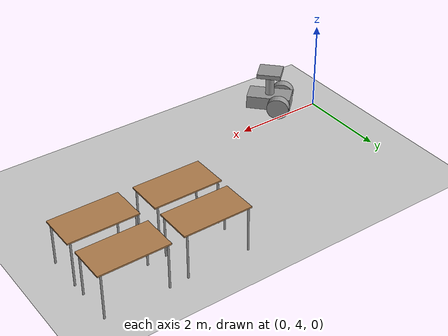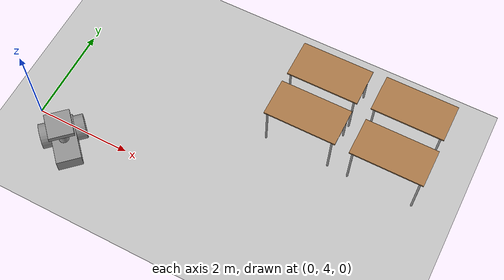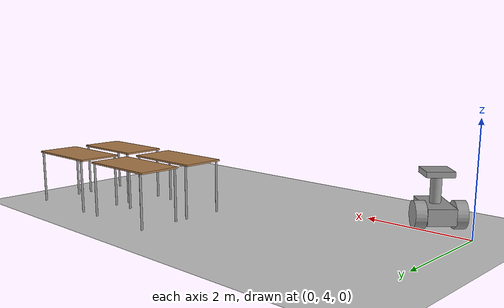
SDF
<sdf version="1.6">
 <world name="default">
  <model name="ground_plane">
   <static>1</static>
   <link name="link">
    <collision name="collision">
     <geometry><plane><normal>0 0 1</normal><size>100 100</size></plane></geometry>
     <surface><friction><ode><mu>100</mu><mu2>50</mu2></ode></friction></surface>
    </collision>
    <visual name="visual">
     <cast_shadows>0</cast_shadows>
     <geometry><plane><normal>0 0 1</normal><size>100 100</size></plane></geometry>
     <material>
      <script><uri>file://media/materials/scripts/gazebo.material</uri><name>Gazebo/Grey</name></script>
     </material>
    </visual>
   </link>
  </model>
  <model name="cody_1">
   <link name="link_0">
    <pose>2.26803 -0.161715 0.25 0 -0 0</pose>
    <inertial>
     <mass>0.139888</mass>
     <inertia>
      <ixx>0.00424815</ixx>
      <ixy>0</ixy>
      <ixz>0</ixz>
      <iyy>0.01242</iyy>
      <iyz>0</iyz>
      <izz>0.0151428</izz>
     </inertia>
    </inertial>
    <visual name="visual">
     <geometry><box><size>1 0.5 0.3</size></box></geometry>
     <material>
      <lighting>1</lighting>
      <script><uri>file://media/materials/scripts/gazebo.material</uri><name>Gazebo/Grey</name></script>
      <shader type="pixel"><normal_map>__default__</normal_map></shader>
      <ambient>0.3 0.3 0.3 1</ambient>
      <diffuse>0.7 0.7 0.7 1</diffuse>
      <specular>0.01 0.01 0.01 1</specular>
      <emissive>0 0 0 1</emissive>
     </material>
    </visual>
    <collision name="collision">
     <geometry><box><size>1 0.5 0.3</size></box></geometry>
     <surface>
      <friction>
       <ode><mu>1</mu><mu2>1</mu2><fdir1>0 0 0</fdir1><slip1>0</slip1><slip2>0</slip2></ode>
       <torsional>
        <coefficient>1</coefficient>
        <patch_radius>0</patch_radius>
        <surface_radius>0</surface_radius>
        <use_patch_radius>1</use_patch_radius>
        <ode><slip>0</slip></ode>
       </torsional>
      </friction>
      <bounce><restitution_coefficient>0</restitution_coefficient><threshold>1e+06</threshold></bounce>
      <contact>
       <collide_without_contact>0</collide_without_contact>
       <collide_without_contact_bitmask>1</collide_without_contact_bitmask>
       <collide_bitmask>1</collide_bitmask>
       <ode>
        <soft_cfm>0</soft_cfm>
        <soft_erp>0.2</soft_erp>
        <kp>1e+13</kp>
        <kd>1</kd>
        <max_vel>0.01</max_vel>
        <min_depth>0</min_depth>
       </ode>
       <bullet>
        <split_impulse>1</split_impulse>
        <split_impulse_penetration_threshold>-0.01</split_impulse_penetration_threshold>
        <soft_cfm>0</soft_cfm>
        <soft_erp>0.2</soft_erp>
        <kp>1e+13</kp>
        <kd>1</kd>
       </bullet>
      </contact>
     </surface>
    </collision>
   </link>
   <link name="link_1">
    <pose>1.96803 -0.161715 0.2 0 -0 0</pose>
    <inertial>
     <mass>1</mass>
     <inertia><ixx>0.1</ixx><ixy>0</ixy><ixz>0</ixz><iyy>0.1</iyy><iyz>0</iyz><izz>0.1</izz></inertia>
    </inertial>
    <visual name="visual">
     <geometry><sphere><radius>0.2</radius></sphere></geometry>
     <material>
      <lighting>1</lighting>
      <script><uri>file://media/materials/scripts/gazebo.material</uri><name>Gazebo/Grey</name></script>
      <shader type="pixel"><normal_map>__default__</normal_map></shader>
      <ambient>0.3 0.3 0.3 1</ambient>
      <diffuse>0.7 0.7 0.7 1</diffuse>
      <specular>0.01 0.01 0.01 1</specular>
      <emissive>0 0 0 1</emissive>
     </material>
    </visual>
    <collision name="collision">
     <geometry><sphere><radius>0.2</radius></sphere></geometry>
     <surface>
      <friction>
       <ode><mu>1</mu><mu2>1</mu2><fdir1>0 0 0</fdir1><slip1>0</slip1><slip2>0</slip2></ode>
       <torsional>
        <coefficient>1</coefficient>
        <patch_radius>0</patch_radius>
        <surface_radius>0</surface_radius>
        <use_patch_radius>1</use_patch_radius>
        <ode><slip>0</slip></ode>
       </torsional>
      </friction>
      <bounce><restitution_coefficient>0</restitution_coefficient><threshold>1e+06</threshold></bounce>
      <contact>
       <collide_without_contact>0</collide_without_contact>
       <collide_without_contact_bitmask>1</collide_without_contact_bitmask>
       <collide_bitmask>1</collide_bitmask>
       <ode>
        <soft_cfm>0</soft_cfm>
        <soft_erp>0.2</soft_erp>
        <kp>1e+13</kp>
        <kd>1</kd>
        <max_vel>0.01</max_vel>
        <min_depth>0</min_depth>
       </ode>
       <bullet>
        <split_impulse>1</split_impulse>
        <split_impulse_penetration_threshold>-0.01</split_impulse_penetration_threshold>
        <soft_cfm>0</soft_cfm>
        <soft_erp>0.2</soft_erp>
        <kp>1e+13</kp>
        <kd>1</kd>
       </bullet>
      </contact>
     </surface>
    </collision>
   </link>
   <link name="link_2_clone">
    <pose>2.51803 -0.511739 0.25 1.5707 -0 0</pose>
    <inertial>
     <mass>1</mass>
     <inertia><ixx>0.145833</ixx><ixy>0</ixy><ixz>0</ixz><iyy>0.145833</iyy><iyz>0</iyz><izz>0.125</izz></inertia>
    </inertial>
    <visual name="visual">
     <geometry><cylinder><radius>0.25</radius><length>0.2</length></cylinder></geometry>
     <material>
      <lighting>1</lighting>
      <script><uri>file://media/materials/scripts/gazebo.material</uri><name>Gazebo/Grey</name></script>
      <shader type="pixel"><normal_map>__default__</normal_map></shader>
      <ambient>0.3 0.3 0.3 1</ambient>
      <diffuse>0.7 0.7 0.7 1</diffuse>
      <specular>0.01 0.01 0.01 1</specular>
      <emissive>0 0 0 1</emissive>
     </material>
    </visual>
    <collision name="collision">
     <geometry><cylinder><radius>0.25</radius><length>0.2</length></cylinder></geometry>
     <surface>
      <friction>
       <ode><mu>1</mu><mu2>1</mu2><fdir1>0 0 0</fdir1><slip1>0</slip1><slip2>0</slip2></ode>
       <torsional>
        <coefficient>1</coefficient>
        <patch_radius>0</patch_radius>
        <surface_radius>0</surface_radius>
        <use_patch_radius>1</use_patch_radius>
        <ode><slip>0</slip></ode>
       </torsional>
      </friction>
      <bounce><restitution_coefficient>0</restitution_coefficient><threshold>1e+06</threshold></bounce>
      <contact>
       <collide_without_contact>0</collide_without_contact>
       <collide_without_contact_bitmask>1</collide_without_contact_bitmask>
       <collide_bitmask>1</collide_bitmask>
       <ode>
        <soft_cfm>0</soft_cfm>
        <soft_erp>0.2</soft_erp>
        <kp>1e+13</kp>
        <kd>1</kd>
        <max_vel>0.01</max_vel>
        <min_depth>0</min_depth>
       </ode>
       <bullet>
        <split_impulse>1</split_impulse>
        <split_impulse_penetration_threshold>-0.01</split_impulse_penetration_threshold>
        <soft_cfm>0</soft_cfm>
        <soft_erp>0.2</soft_erp>
        <kp>1e+13</kp>
        <kd>1</kd>
       </bullet>
      </contact>
     </surface>
    </collision>
   </link>
   <link name="link_3_clone">
    <pose>2.51803 0.188309 0.25 1.5707 -0 0</pose>
    <inertial>
     <mass>1</mass>
     <inertia><ixx>0.145833</ixx><ixy>0</ixy><ixz>0</ixz><iyy>0.145833</iyy><iyz>0</iyz><izz>0.125</izz></inertia>
    </inertial>
    <visual name="visual">
     <geometry><cylinder><radius>0.25</radius><length>0.2</length></cylinder></geometry>
     <material>
      <lighting>1</lighting>
      <script><uri>file://media/materials/scripts/gazebo.material</uri><name>Gazebo/Grey</name></script>
      <shader type="pixel"><normal_map>__default__</normal_map></shader>
      <ambient>0.3 0.3 0.3 1</ambient>
      <diffuse>0.7 0.7 0.7 1</diffuse>
      <specular>0.01 0.01 0.01 1</specular>
      <emissive>0 0 0 1</emissive>
     </material>
    </visual>
    <collision name="collision">
     <geometry><cylinder><radius>0.25</radius><length>0.2</length></cylinder></geometry>
     <surface>
      <friction>
       <ode><mu>1</mu><mu2>1</mu2><fdir1>0 0 0</fdir1><slip1>0</slip1><slip2>0</slip2></ode>
       <torsional>
        <coefficient>1</coefficient>
        <patch_radius>0</patch_radius>
        <surface_radius>0</surface_radius>
        <use_patch_radius>1</use_patch_radius>
        <ode><slip>0</slip></ode>
       </torsional>
      </friction>
      <bounce><restitution_coefficient>0</restitution_coefficient><threshold>1e+06</threshold></bounce>
      <contact>
       <collide_without_contact>0</collide_without_contact>
       <collide_without_contact_bitmask>1</collide_without_contact_bitmask>
       <collide_bitmask>1</collide_bitmask>
       <ode>
        <soft_cfm>0</soft_cfm>
        <soft_erp>0.2</soft_erp>
        <kp>1e+13</kp>
        <kd>1</kd>
        <max_vel>0.01</max_vel>
        <min_depth>0</min_depth>
       </ode>
       <bullet>
        <split_impulse>1</split_impulse>
        <split_impulse_penetration_threshold>-0.01</split_impulse_penetration_threshold>
        <soft_cfm>0</soft_cfm>
        <soft_erp>0.2</soft_erp>
        <kp>1e+13</kp>
        <kd>1</kd>
       </bullet>
      </contact>
     </surface>
    </collision>
   </link>
   <link name="link_4">
    <pose>2.26803 -0.161715 0.65 0 -0 0</pose>
    <inertial>
     <mass>1</mass>
     <inertia><ixx>0.145833</ixx><ixy>0</ixy><ixz>0</ixz><iyy>0.145833</iyy><iyz>0</iyz><izz>0.125</izz></inertia>
    </inertial>
    <visual name="visual">
     <geometry><cylinder><radius>0.1</radius><length>0.5</length></cylinder></geometry>
     <material>
      <lighting>1</lighting>
      <script><uri>file://media/materials/scripts/gazebo.material</uri><name>Gazebo/Grey</name></script>
      <shader type="pixel"><normal_map>__default__</normal_map></shader>
      <ambient>0.3 0.3 0.3 1</ambient>
      <diffuse>0.7 0.7 0.7 1</diffuse>
      <specular>0.01 0.01 0.01 1</specular>
      <emissive>0 0 0 1</emissive>
     </material>
    </visual>
    <collision name="collision">
     <geometry><cylinder><radius>0.1</radius><length>0.5</length></cylinder></geometry>
     <surface>
      <friction>
       <ode><mu>1</mu><mu2>1</mu2><fdir1>0 0 0</fdir1><slip1>0</slip1><slip2>0</slip2></ode>
       <torsional>
        <coefficient>1</coefficient>
        <patch_radius>0</patch_radius>
        <surface_radius>0</surface_radius>
        <use_patch_radius>1</use_patch_radius>
        <ode><slip>0</slip></ode>
       </torsional>
      </friction>
      <bounce><restitution_coefficient>0</restitution_coefficient><threshold>1e+06</threshold></bounce>
      <contact>
       <collide_without_contact>0</collide_without_contact>
       <collide_without_contact_bitmask>1</collide_without_contact_bitmask>
       <collide_bitmask>1</collide_bitmask>
       <ode>
        <soft_cfm>0</soft_cfm>
        <soft_erp>0.2</soft_erp>
        <kp>1e+13</kp>
        <kd>1</kd>
        <max_vel>0.01</max_vel>
        <min_depth>0</min_depth>
       </ode>
       <bullet>
        <split_impulse>1</split_impulse>
        <split_impulse_penetration_threshold>-0.01</split_impulse_penetration_threshold>
        <soft_cfm>0</soft_cfm>
        <soft_erp>0.2</soft_erp>
        <kp>1e+13</kp>
        <kd>1</kd>
       </bullet>
      </contact>
     </surface>
    </collision>
   </link>
   <link name="link_5_clone">
    <pose>2.26803 -0.161715 0.95 0 -0 0</pose>
    <inertial>
     <mass>0.0226706</mass>
     <inertia>
      <ixx>0.00054023</ixx>
      <ixy>0</ixy>
      <ixz>0</ixz>
      <iyy>0.0004373</iyy>
      <iyz>0</iyz>
      <izz>0.00094619</izz>
     </inertia>
    </inertial>
    <visual name="visual">
     <geometry><box><size>0.5414 0.5 0.1</size></box></geometry>
     <material>
      <lighting>1</lighting>
      <script><uri>file://media/materials/scripts/gazebo.material</uri><name>Gazebo/Grey</name></script>
      <shader type="pixel"><normal_map>__default__</normal_map></shader>
      <ambient>0.3 0.3 0.3 1</ambient>
      <diffuse>0.7 0.7 0.7 1</diffuse>
      <specular>0.01 0.01 0.01 1</specular>
      <emissive>0 0 0 1</emissive>
     </material>
    </visual>
    <collision name="collision">
     <geometry><box><size>0.472414 0.526936 0.091081</size></box></geometry>
     <surface>
      <friction>
       <ode><mu>1</mu><mu2>1</mu2><fdir1>0 0 0</fdir1><slip1>0</slip1><slip2>0</slip2></ode>
       <torsional>
        <coefficient>1</coefficient>
        <patch_radius>0</patch_radius>
        <surface_radius>0</surface_radius>
        <use_patch_radius>1</use_patch_radius>
        <ode><slip>0</slip></ode>
       </torsional>
      </friction>
      <bounce><restitution_coefficient>0</restitution_coefficient><threshold>1e+06</threshold></bounce>
      <contact>
       <collide_without_contact>0</collide_without_contact>
       <collide_without_contact_bitmask>1</collide_without_contact_bitmask>
       <collide_bitmask>1</collide_bitmask>
       <ode>
        <soft_cfm>0</soft_cfm>
        <soft_erp>0.2</soft_erp>
        <kp>1e+13</kp>
        <kd>1</kd>
        <max_vel>0.01</max_vel>
        <min_depth>0</min_depth>
       </ode>
       <bullet>
        <split_impulse>1</split_impulse>
        <split_impulse_penetration_threshold>-0.01</split_impulse_penetration_threshold>
        <soft_cfm>0</soft_cfm>
        <soft_erp>0.2</soft_erp>
        <kp>1e+13</kp>
        <kd>1</kd>
       </bullet>
      </contact>
     </surface>
    </collision>
   </link>
   <joint name="link_0_JOINT_0_0" type="revolute">
    <parent>link_0</parent>
    <child>link_4</child>
    <axis>
     <xyz>0 0 1</xyz>
     <use_parent_model_frame>0</use_parent_model_frame>
     <limit>
      <lower>-1.79769e+308</lower>
      <upper>1.79769e+308</upper>
      <effort>-1</effort>
      <velocity>-1</velocity>
     </limit>
     <dynamics>
      <spring_reference>0</spring_reference>
      <spring_stiffness>0</spring_stiffness>
      <damping>0</damping>
     </dynamics>
    </axis>
    <physics>
     <ode><limit><cfm>0</cfm><erp>0.2</erp></limit><suspension><cfm>0</cfm><erp>0.2</erp></suspension></ode>
    </physics>
   </joint>
   <joint name="link_0_JOINT_0" type="ball">
    <parent>link_0</parent>
    <child>link_1</child>
    <physics>
     <ode><limit><cfm>0</cfm><erp>0.2</erp></limit><suspension><cfm>0</cfm><erp>0.2</erp></suspension></ode>
    </physics>
   </joint>
   <joint name="link_0_JOINT_2" type="revolute">
    <parent>link_0</parent>
    <child>link_2_clone</child>
    <axis>
     <xyz>0 0 1</xyz>
     <use_parent_model_frame>0</use_parent_model_frame>
     <limit>
      <lower>-1.79769e+308</lower>
      <upper>1.79769e+308</upper>
      <effort>-1</effort>
      <velocity>-1</velocity>
     </limit>
     <dynamics>
      <spring_reference>0</spring_reference>
      <spring_stiffness>0</spring_stiffness>
      <damping>0</damping>
      <friction>0</friction>
     </dynamics>
    </axis>
    <physics>
     <ode><limit><cfm>0</cfm><erp>0.2</erp></limit><suspension><cfm>0</cfm><erp>0.2</erp></suspension></ode>
    </physics>
   </joint>
   <joint name="link_0_JOINT_4" type="revolute">
    <parent>link_0</parent>
    <child>link_3_clone</child>
    <axis>
     <xyz>0 0 1</xyz>
     <use_parent_model_frame>0</use_parent_model_frame>
     <limit>
      <lower>-1.79769e+308</lower>
      <upper>1.79769e+308</upper>
      <effort>-1</effort>
      <velocity>-1</velocity>
     </limit>
     <dynamics>
      <spring_reference>0</spring_reference>
      <spring_stiffness>0</spring_stiffness>
      <damping>0</damping>
      <friction>0</friction>
     </dynamics>
    </axis>
    <physics>
     <ode><limit><cfm>0</cfm><erp>0.2</erp></limit><suspension><cfm>0</cfm><erp>0.2</erp></suspension></ode>
    </physics>
   </joint>
   <joint name="link_4_JOINT_1" type="fixed">
    <parent>link_4</parent>
    <child>link_5_clone</child>
    <physics>
     <ode><limit><cfm>0</cfm><erp>0.2</erp></limit><suspension><cfm>0</cfm><erp>0.2</erp></suspension></ode>
    </physics>
   </joint>
   <static>0</static>
   <pose>2.37057 1.77583 -2.6e-05 2.6e-05 -1.4e-05 2.32656</pose>
  </model>
  <model name="table_12">
   <static>1</static>
   <link name="link">
    <collision name="surface">
     <pose>0 0 1 0 -0 0</pose>
     <geometry><box><size>1.5 0.8 0.03</size></box></geometry>
     <surface><friction><ode><mu>0.6</mu><mu2>0.6</mu2></ode></friction></surface>
    </collision>
    <visual name="visual1">
     <pose>0 0 1 0 -0 0</pose>
     <geometry><box><size>1.5 0.8 0.03</size></box></geometry>
     <material>
      <script><uri>file://media/materials/scripts/gazebo.material</uri><name>Gazebo/Wood</name></script>
     </material>
    </visual>
    <collision name="front_left_leg">
     <pose>0.68 0.38 0.5 0 -0 0</pose>
     <geometry><cylinder><radius>0.02</radius><length>1</length></cylinder></geometry>
    </collision>
    <visual name="front_left_leg">
     <pose>0.68 0.38 0.5 0 -0 0</pose>
     <geometry><cylinder><radius>0.02</radius><length>1</length></cylinder></geometry>
     <material>
      <script><uri>file://media/materials/scripts/gazebo.material</uri><name>Gazebo/Grey</name></script>
     </material>
    </visual>
    <collision name="front_right_leg">
     <pose>0.68 -0.38 0.5 0 -0 0</pose>
     <geometry><cylinder><radius>0.02</radius><length>1</length></cylinder></geometry>
    </collision>
    <visual name="front_right_leg">
     <pose>0.68 -0.38 0.5 0 -0 0</pose>
     <geometry><cylinder><radius>0.02</radius><length>1</length></cylinder></geometry>
     <material>
      <script><uri>file://media/materials/scripts/gazebo.material</uri><name>Gazebo/Grey</name></script>
     </material>
    </visual>
    <collision name="back_right_leg">
     <pose>-0.68 -0.38 0.5 0 -0 0</pose>
     <geometry><cylinder><radius>0.02</radius><length>1</length></cylinder></geometry>
    </collision>
    <visual name="back_right_leg">
     <pose>-0.68 -0.38 0.5 0 -0 0</pose>
     <geometry><cylinder><radius>0.02</radius><length>1</length></cylinder></geometry>
     <material>
      <script><uri>file://media/materials/scripts/gazebo.material</uri><name>Gazebo/Grey</name></script>
     </material>
    </visual>
    <collision name="back_left_leg">
     <pose>-0.68 0.38 0.5 0 -0 0</pose>
     <geometry><cylinder><radius>0.02</radius><length>1</length></cylinder></geometry>
    </collision>
    <visual name="back_left_leg">
     <pose>-0.68 0.38 0.5 0 -0 0</pose>
     <geometry><cylinder><radius>0.02</radius><length>1</length></cylinder></geometry>
     <material>
      <script><uri>file://media/materials/scripts/gazebo.material</uri><name>Gazebo/Grey</name></script>
     </material>
    </visual>
   </link>
   <pose>5.06043 6.96724 0 0 -0 0</pose>
  </model>
  <model name="table_13">
   <static>1</static>
   <link name="link">
    <collision name="surface">
     <pose>0 0 1 0 -0 0</pose>
     <geometry><box><size>1.5 0.8 0.03</size></box></geometry>
     <surface><friction><ode><mu>0.6</mu><mu2>0.6</mu2></ode></friction></surface>
    </collision>
    <visual name="visual1">
     <pose>0 0 1 0 -0 0</pose>
     <geometry><box><size>1.5 0.8 0.03</size></box></geometry>
     <material>
      <script><uri>file://media/materials/scripts/gazebo.material</uri><name>Gazebo/Wood</name></script>
     </material>
    </visual>
    <collision name="front_left_leg">
     <pose>0.68 0.38 0.5 0 -0 0</pose>
     <geometry><cylinder><radius>0.02</radius><length>1</length></cylinder></geometry>
    </collision>
    <visual name="front_left_leg">
     <pose>0.68 0.38 0.5 0 -0 0</pose>
     <geometry><cylinder><radius>0.02</radius><length>1</length></cylinder></geometry>
     <material>
      <script><uri>file://media/materials/scripts/gazebo.material</uri><name>Gazebo/Grey</name></script>
     </material>
    </visual>
    <collision name="front_right_leg">
     <pose>0.68 -0.38 0.5 0 -0 0</pose>
     <geometry><cylinder><radius>0.02</radius><length>1</length></cylinder></geometry>
    </collision>
    <visual name="front_right_leg">
     <pose>0.68 -0.38 0.5 0 -0 0</pose>
     <geometry><cylinder><radius>0.02</radius><length>1</length></cylinder></geometry>
     <material>
      <script><uri>file://media/materials/scripts/gazebo.material</uri><name>Gazebo/Grey</name></script>
     </material>
    </visual>
    <collision name="back_right_leg">
     <pose>-0.68 -0.38 0.5 0 -0 0</pose>
     <geometry><cylinder><radius>0.02</radius><length>1</length></cylinder></geometry>
    </collision>
    <visual name="back_right_leg">
     <pose>-0.68 -0.38 0.5 0 -0 0</pose>
     <geometry><cylinder><radius>0.02</radius><length>1</length></cylinder></geometry>
     <material>
      <script><uri>file://media/materials/scripts/gazebo.material</uri><name>Gazebo/Grey</name></script>
     </material>
    </visual>
    <collision name="back_left_leg">
     <pose>-0.68 0.38 0.5 0 -0 0</pose>
     <geometry><cylinder><radius>0.02</radius><length>1</length></cylinder></geometry>
    </collision>
    <visual name="back_left_leg">
     <pose>-0.68 0.38 0.5 0 -0 0</pose>
     <geometry><cylinder><radius>0.02</radius><length>1</length></cylinder></geometry>
     <material>
      <script><uri>file://media/materials/scripts/gazebo.material</uri><name>Gazebo/Grey</name></script>
     </material>
    </visual>
   </link>
   <pose>6.83807 6.99162 0 0 -0 0</pose>
  </model>
  <model name="table_14">
   <static>1</static>
   <link name="link">
    <collision name="surface">
     <pose>0 0 1 0 -0 0</pose>
     <geometry><box><size>1.5 0.8 0.03</size></box></geometry>
     <surface><friction><ode><mu>0.6</mu><mu2>0.6</mu2></ode></friction></surface>
    </collision>
    <visual name="visual1">
     <pose>0 0 1 0 -0 0</pose>
     <geometry><box><size>1.5 0.8 0.03</size></box></geometry>
     <material>
      <script><uri>file://media/materials/scripts/gazebo.material</uri><name>Gazebo/Wood</name></script>
     </material>
    </visual>
    <collision name="front_left_leg">
     <pose>0.68 0.38 0.5 0 -0 0</pose>
     <geometry><cylinder><radius>0.02</radius><length>1</length></cylinder></geometry>
    </collision>
    <visual name="front_left_leg">
     <pose>0.68 0.38 0.5 0 -0 0</pose>
     <geometry><cylinder><radius>0.02</radius><length>1</length></cylinder></geometry>
     <material>
      <script><uri>file://media/materials/scripts/gazebo.material</uri><name>Gazebo/Grey</name></script>
     </material>
    </visual>
    <collision name="front_right_leg">
     <pose>0.68 -0.38 0.5 0 -0 0</pose>
     <geometry><cylinder><radius>0.02</radius><length>1</length></cylinder></geometry>
    </collision>
    <visual name="front_right_leg">
     <pose>0.68 -0.38 0.5 0 -0 0</pose>
     <geometry><cylinder><radius>0.02</radius><length>1</length></cylinder></geometry>
     <material>
      <script><uri>file://media/materials/scripts/gazebo.material</uri><name>Gazebo/Grey</name></script>
     </material>
    </visual>
    <collision name="back_right_leg">
     <pose>-0.68 -0.38 0.5 0 -0 0</pose>
     <geometry><cylinder><radius>0.02</radius><length>1</length></cylinder></geometry>
    </collision>
    <visual name="back_right_leg">
     <pose>-0.68 -0.38 0.5 0 -0 0</pose>
     <geometry><cylinder><radius>0.02</radius><length>1</length></cylinder></geometry>
     <material>
      <script><uri>file://media/materials/scripts/gazebo.material</uri><name>Gazebo/Grey</name></script>
     </material>
    </visual>
    <collision name="back_left_leg">
     <pose>-0.68 0.38 0.5 0 -0 0</pose>
     <geometry><cylinder><radius>0.02</radius><length>1</length></cylinder></geometry>
    </collision>
    <visual name="back_left_leg">
     <pose>-0.68 0.38 0.5 0 -0 0</pose>
     <geometry><cylinder><radius>0.02</radius><length>1</length></cylinder></geometry>
     <material>
      <script><uri>file://media/materials/scripts/gazebo.material</uri><name>Gazebo/Grey</name></script>
     </material>
    </visual>
   </link>
   <pose>5.04618 5.9636 0 0 -0 0</pose>
  </model>
  <model name="table_15">
   <static>1</static>
   <link name="link">
    <collision name="surface">
     <pose>0 0 1 0 -0 0</pose>
     <geometry><box><size>1.5 0.8 0.03</size></box></geometry>
     <surface><friction><ode><mu>0.6</mu><mu2>0.6</mu2></ode></friction></surface>
    </collision>
    <visual name="visual1">
     <pose>0 0 1 0 -0 0</pose>
     <geometry><box><size>1.5 0.8 0.03</size></box></geometry>
     <material>
      <script><uri>file://media/materials/scripts/gazebo.material</uri><name>Gazebo/Wood</name></script>
     </material>
    </visual>
    <collision name="front_left_leg">
     <pose>0.68 0.38 0.5 0 -0 0</pose>
     <geometry><cylinder><radius>0.02</radius><length>1</length></cylinder></geometry>
    </collision>
    <visual name="front_left_leg">
     <pose>0.68 0.38 0.5 0 -0 0</pose>
     <geometry><cylinder><radius>0.02</radius><length>1</length></cylinder></geometry>
     <material>
      <script><uri>file://media/materials/scripts/gazebo.material</uri><name>Gazebo/Grey</name></script>
     </material>
    </visual>
    <collision name="front_right_leg">
     <pose>0.68 -0.38 0.5 0 -0 0</pose>
     <geometry><cylinder><radius>0.02</radius><length>1</length></cylinder></geometry>
    </collision>
    <visual name="front_right_leg">
     <pose>0.68 -0.38 0.5 0 -0 0</pose>
     <geometry><cylinder><radius>0.02</radius><length>1</length></cylinder></geometry>
     <material>
      <script><uri>file://media/materials/scripts/gazebo.material</uri><name>Gazebo/Grey</name></script>
     </material>
    </visual>
    <collision name="back_right_leg">
     <pose>-0.68 -0.38 0.5 0 -0 0</pose>
     <geometry><cylinder><radius>0.02</radius><length>1</length></cylinder></geometry>
    </collision>
    <visual name="back_right_leg">
     <pose>-0.68 -0.38 0.5 0 -0 0</pose>
     <geometry><cylinder><radius>0.02</radius><length>1</length></cylinder></geometry>
     <material>
      <script><uri>file://media/materials/scripts/gazebo.material</uri><name>Gazebo/Grey</name></script>
     </material>
    </visual>
    <collision name="back_left_leg">
     <pose>-0.68 0.38 0.5 0 -0 0</pose>
     <geometry><cylinder><radius>0.02</radius><length>1</length></cylinder></geometry>
    </collision>
    <visual name="back_left_leg">
     <pose>-0.68 0.38 0.5 0 -0 0</pose>
     <geometry><cylinder><radius>0.02</radius><length>1</length></cylinder></geometry>
     <material>
      <script><uri>file://media/materials/scripts/gazebo.material</uri><name>Gazebo/Grey</name></script>
     </material>
    </visual>
   </link>
   <pose>6.8481 5.93272 0 0 -0 0</pose>
  </model>
 </world>
</sdf>
